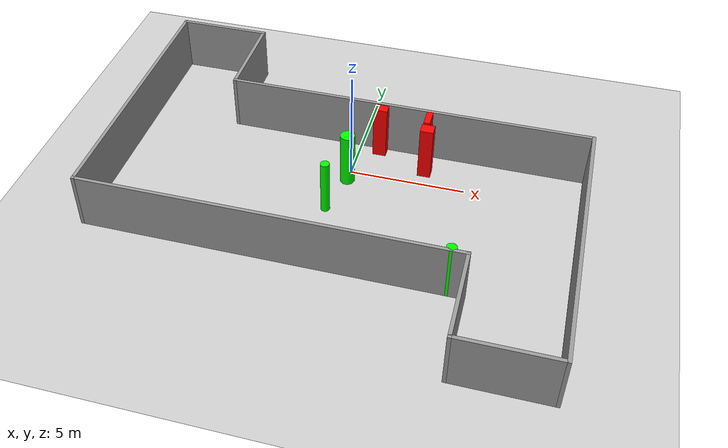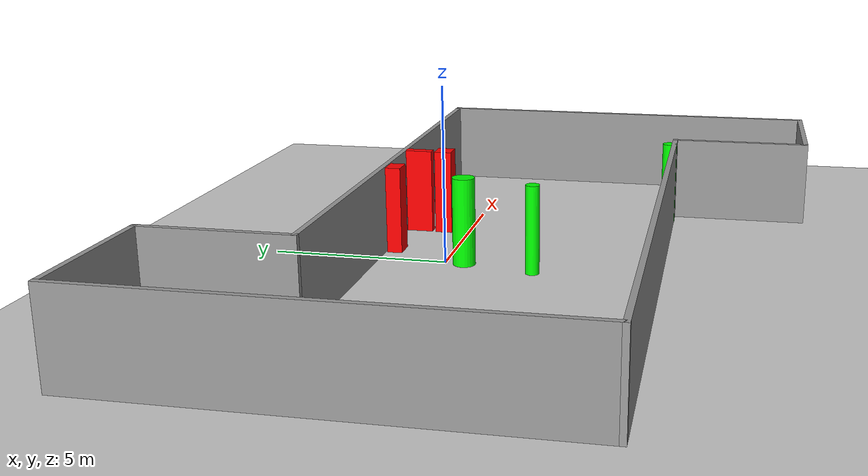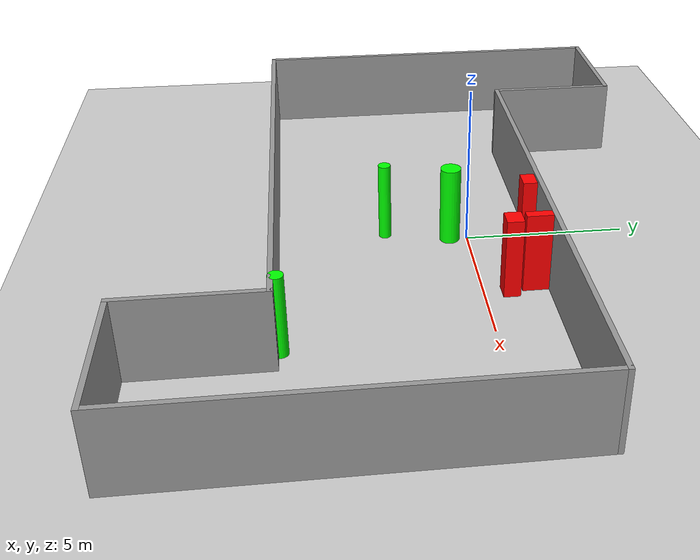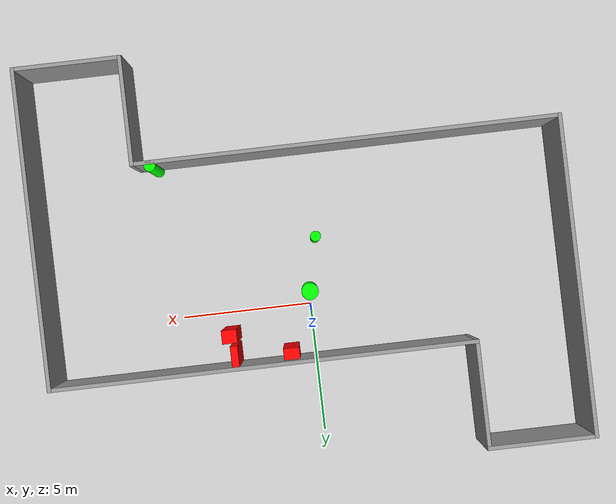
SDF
<sdf version="1.7">
 <world name="default">
  <light name="sun" type="directional">
   <pose>0 0 10 0 -0 0</pose>
   <diffuse>0.8 0.8 0.8 1</diffuse>
   <specular>0.2 0.2 0.2 1</specular>
   <attenuation>
    <range>1000</range>
    <constant>0.9</constant>
    <linear>0.01</linear>
    <quadratic>0.001</quadratic>
   </attenuation>
   <direction>-0.5 0.1 -0.9</direction>
   <spot><inner_angle>0</inner_angle><outer_angle>0</outer_angle><falloff>0</falloff></spot>
  </light>
  <model name="ground_plane">
   <static>1</static>
   <link name="link">
    <collision name="collision">
     <geometry><plane><normal>0 0 1</normal><size>100 100</size></plane></geometry>
     <surface>
      <contact><collide_bitmask>65535</collide_bitmask></contact>
      <friction><ode><mu>100</mu><mu2>50</mu2></ode></friction>
     </surface>
    </collision>
    <visual name="visual">
     <cast_shadows>0</cast_shadows>
     <geometry><plane><normal>0 0 1</normal><size>100 100</size></plane></geometry>
     <material>
      <script><uri>file://media/materials/scripts/gazebo.material</uri><name>Gazebo/Grey</name></script>
     </material>
    </visual>
   </link>
  </model>
  <gravity>0 0 -9.8</gravity>
  <magnetic_field>6e-06 2.3e-05 -4.2e-05</magnetic_field>
  <atmosphere type="adiabatic"/>
  <physics type="ode">
   <max_step_size>0.001</max_step_size>
   <real_time_factor>1</real_time_factor>
   <real_time_update_rate>1000</real_time_update_rate>
  </physics>
  <scene><ambient>0.4 0.4 0.4 1</ambient><background>0.7 0.7 0.7 1</background><shadows>1</shadows></scene>
  <spherical_coordinates>
   <surface_model>EARTH_WGS84</surface_model>
   <latitude_deg>0</latitude_deg>
   <longitude_deg>0</longitude_deg>
   <elevation>0</elevation>
   <heading_deg>0</heading_deg>
  </spherical_coordinates>
  <model name="my_base_walls">
   <link name="Wall_13">
    <collision name="Wall_13_Collision">
     <geometry><box><size>12.15 0.15 2.5</size></box></geometry>
     <pose>0 0 1.25 0 -0 0</pose>
    </collision>
    <visual name="Wall_13_Visual">
     <pose>0 0 1.25 0 -0 0</pose>
     <geometry><box><size>12.15 0.15 2.5</size></box></geometry>
     <material>
      <script><uri>file://media/materials/scripts/gazebo.material</uri><name>Gazebo/Grey</name></script>
      <ambient>1 1 1 1</ambient>
     </material>
     <meta><layer>0</layer></meta>
    </visual>
    <pose>10 -2 0 0 -0 1.5708</pose>
   </link>
   <link name="Wall_15">
    <collision name="Wall_15_Collision">
     <geometry><box><size>16.15 0.15 2.5</size></box></geometry>
     <pose>0 0 1.25 0 -0 0</pose>
    </collision>
    <visual name="Wall_15_Visual">
     <pose>0 0 1.25 0 -0 0</pose>
     <geometry><box><size>16.15 0.15 2.5</size></box></geometry>
     <material>
      <script><uri>file://media/materials/scripts/gazebo.material</uri><name>Gazebo/Grey</name></script>
      <ambient>1 1 1 1</ambient>
     </material>
     <meta><layer>0</layer></meta>
    </visual>
    <pose>2 4 0 0 -0 3.14159</pose>
   </link>
   <link name="Wall_17">
    <collision name="Wall_17_Collision">
     <geometry><box><size>4.15 0.15 2.5</size></box></geometry>
     <pose>0 0 1.25 0 -0 0</pose>
    </collision>
    <visual name="Wall_17_Visual">
     <pose>0 0 1.25 0 -0 0</pose>
     <geometry><box><size>4.15 0.15 2.5</size></box></geometry>
     <material>
      <script><uri>file://media/materials/scripts/gazebo.material</uri><name>Gazebo/Grey</name></script>
      <ambient>1 1 1 1</ambient>
     </material>
     <meta><layer>0</layer></meta>
    </visual>
    <pose>6 -6 0 0 -0 -1.5708</pose>
   </link>
   <link name="Wall_19">
    <collision name="Wall_19_Collision">
     <geometry><box><size>12.15 0.15 2.5</size></box></geometry>
     <pose>0 0 1.25 0 -0 0</pose>
    </collision>
    <visual name="Wall_19_Visual">
     <pose>0 0 1.25 0 -0 0</pose>
     <geometry><box><size>12.15 0.15 2.5</size></box></geometry>
     <material>
      <script><uri>file://media/materials/scripts/gazebo.material</uri><name>Gazebo/Grey</name></script>
      <ambient>1 1 1 1</ambient>
     </material>
     <meta><layer>0</layer></meta>
    </visual>
    <pose>-10 2 0 0 -0 1.5708</pose>
   </link>
   <link name="Wall_21">
    <collision name="Wall_21_Collision">
     <geometry><box><size>4.15 0.15 2.5</size></box></geometry>
     <pose>0 0 1.25 0 -0 0</pose>
    </collision>
    <visual name="Wall_21_Visual">
     <pose>0 0 1.25 0 -0 0</pose>
     <geometry><box><size>4.15 0.15 2.5</size></box></geometry>
     <material>
      <script><uri>file://media/materials/scripts/gazebo.material</uri><name>Gazebo/Grey</name></script>
      <ambient>1 1 1 1</ambient>
     </material>
     <meta><layer>0</layer></meta>
    </visual>
    <pose>-8 8 0 0 -0 0</pose>
   </link>
   <link name="Wall_23">
    <collision name="Wall_23_Collision">
     <geometry><box><size>4.15 0.15 2.5</size></box></geometry>
     <pose>0 0 1.25 0 -0 0</pose>
    </collision>
    <visual name="Wall_23_Visual">
     <pose>0 0 1.25 0 -0 0</pose>
     <geometry><box><size>4.15 0.15 2.5</size></box></geometry>
     <material>
      <script><uri>file://media/materials/scripts/gazebo.material</uri><name>Gazebo/Grey</name></script>
      <ambient>1 1 1 1</ambient>
     </material>
     <meta><layer>0</layer></meta>
    </visual>
    <pose>-6 6 0 0 -0 -1.5708</pose>
   </link>
   <link name="Wall_25">
    <collision name="Wall_25_Collision">
     <geometry><box><size>4.15 0.15 2.5</size></box></geometry>
     <pose>0 0 1.25 0 -0 0</pose>
    </collision>
    <visual name="Wall_25_Visual">
     <pose>0 0 1.25 0 -0 0</pose>
     <geometry><box><size>4.15 0.15 2.5</size></box></geometry>
     <material>
      <script><uri>file://media/materials/scripts/gazebo.material</uri><name>Gazebo/Grey</name></script>
      <ambient>1 1 1 1</ambient>
     </material>
     <meta><layer>0</layer></meta>
    </visual>
    <pose>8 -8 0 0 -0 0</pose>
   </link>
   <link name="Wall_9">
    <collision name="Wall_9_Collision">
     <geometry><box><size>16.15 0.15 2.5</size></box></geometry>
     <pose>0 0 1.25 0 -0 0</pose>
    </collision>
    <visual name="Wall_9_Visual">
     <pose>0 0 1.25 0 -0 0</pose>
     <geometry><box><size>16.15 0.15 2.5</size></box></geometry>
     <material>
      <script><uri>file://media/materials/scripts/gazebo.material</uri><name>Gazebo/Grey</name></script>
      <ambient>1 1 1 1</ambient>
     </material>
     <meta><layer>0</layer></meta>
    </visual>
    <pose>-2 -4 0 0 -0 3.14159</pose>
   </link>
   <static>1</static>
   <pose>-0 -2 0 0 -0 0</pose>
  </model>
  <model name="cylinder1">
   <static>1</static>
   <link name="link">
    <inertial>
     <mass>1</mass>
     <inertia><ixx>0.5</ixx><ixy>0</ixy><ixz>0</ixz><iyy>0.5</iyy><iyz>0</iyz><izz>1</izz></inertia>
    </inertial>
    <collision name="collision">
     <geometry><cylinder><radius>0.3181638244650403</radius><length>2.5</length></cylinder></geometry>
    </collision>
    <visual name="visual">
     <geometry><cylinder><radius>0.3181638244650403</radius><length>2.5</length></cylinder></geometry>
     <material>
      <ambient>0 1 0 1</ambient>
      <diffuse>0 1 0 1</diffuse>
      <specular>0.1 0.1 0.1 1</specular>
      <emissive>0 0 0 0</emissive>
     </material>
    </visual>
   </link>
   <pose>-0.04652383781834146 -0.5526707134114162 1.25 0 0 0</pose>
  </model>
  <model name="cylinder2">
   <static>1</static>
   <link name="link">
    <inertial>
     <mass>1</mass>
     <inertia><ixx>0.5</ixx><ixy>0</ixy><ixz>0</ixz><iyy>0.5</iyy><iyz>0</iyz><izz>1</izz></inertia>
    </inertial>
    <collision name="collision">
     <geometry><cylinder><radius>0.19410418828730971</radius><length>2.5</length></cylinder></geometry>
    </collision>
    <visual name="visual">
     <geometry><cylinder><radius>0.19410418828730971</radius><length>2.5</length></cylinder></geometry>
     <material>
      <ambient>0 1 0 1</ambient>
      <diffuse>0 1 0 1</diffuse>
      <specular>0.1 0.1 0.1 1</specular>
      <emissive>0 0 0 0</emissive>
     </material>
    </visual>
   </link>
   <pose>-0.48200507674966353 -2.5651864071568555 1.25 0 0 0</pose>
  </model>
  <model name="cylinder3">
   <static>1</static>
   <link name="link">
    <inertial>
     <mass>1</mass>
     <inertia><ixx>0.5</ixx><ixy>0</ixy><ixz>0</ixz><iyy>0.5</iyy><iyz>0</iyz><izz>1</izz></inertia>
    </inertial>
    <collision name="collision">
     <geometry><cylinder><radius>0.21527449647210034</radius><length>2.5</length></cylinder></geometry>
    </collision>
    <visual name="visual">
     <geometry><cylinder><radius>0.21527449647210034</radius><length>2.5</length></cylinder></geometry>
     <material>
      <ambient>0 1 0 1</ambient>
      <diffuse>0 1 0 1</diffuse>
      <specular>0.1 0.1 0.1 1</specular>
      <emissive>0 0 0 0</emissive>
     </material>
    </visual>
   </link>
   <pose>5.3401278450224225 -5.867265889286769 1.25 0 0 0</pose>
  </model>
  <model name="box1">
   <static>1</static>
   <link name="link">
    <inertial>
     <mass>1</mass>
     <inertia><ixx>0.083</ixx><ixy>0</ixy><ixz>0</ixz><iyy>0.083</iyy><iyz>0</iyz><izz>0.083</izz></inertia>
    </inertial>
    <collision name="collision">
     <geometry><box><size>0.595431835028837 0.4310547415752019 2.5</size></box></geometry>
    </collision>
    <visual name="visual">
     <geometry><box><size>0.595431835028837 0.4310547415752019 2.5</size></box></geometry>
     <material>
      <ambient>1 0 0 1</ambient>
      <diffuse>1 0 0 1</diffuse>
      <specular>0.1 0.1 0.1 1</specular>
      <emissive>0 0 0 0</emissive>
     </material>
    </visual>
    <sensor name="my_contact" type="contact">
     <contact><collision>box_collision</collision><topic>__default_topic__</topic></contact>
    </sensor>
   </link>
   <pose>0.8973483627397947 1.6675488380786057 1.25 0 0 0</pose>
  </model>
  <model name="box2">
   <static>1</static>
   <link name="link">
    <inertial>
     <mass>1</mass>
     <inertia><ixx>0.083</ixx><ixy>0</ixy><ixz>0</ixz><iyy>0.083</iyy><iyz>0</iyz><izz>0.083</izz></inertia>
    </inertial>
    <collision name="collision">
     <geometry><box><size>0.2801409331198107 0.7983216855313818 2.5</size></box></geometry>
    </collision>
    <visual name="visual">
     <geometry><box><size>0.2801409331198107 0.7983216855313818 2.5</size></box></geometry>
     <material>
      <ambient>1 0 0 1</ambient>
      <diffuse>1 0 0 1</diffuse>
      <specular>0.1 0.1 0.1 1</specular>
      <emissive>0 0 0 0</emissive>
     </material>
    </visual>
    <sensor name="my_contact" type="contact">
     <contact><collision>box_collision</collision><topic>__default_topic__</topic></contact>
    </sensor>
   </link>
   <pose>3.0068243496436615 1.537313523586577 1.25 0 0 0</pose>
  </model>
  <model name="box3">
   <static>1</static>
   <link name="link">
    <inertial>
     <mass>1</mass>
     <inertia><ixx>0.083</ixx><ixy>0</ixy><ixz>0</ixz><iyy>0.083</iyy><iyz>0</iyz><izz>0.083</izz></inertia>
    </inertial>
    <collision name="collision">
     <geometry><box><size>0.5718807136150114 0.5039458724043354 2.5</size></box></geometry>
    </collision>
    <visual name="visual">
     <geometry><box><size>0.5718807136150114 0.5039458724043354 2.5</size></box></geometry>
     <material>
      <ambient>1 0 0 1</ambient>
      <diffuse>1 0 0 1</diffuse>
      <specular>0.1 0.1 0.1 1</specular>
      <emissive>0 0 0 0</emissive>
     </material>
    </visual>
    <sensor name="my_contact" type="contact">
     <contact><collision>box_collision</collision><topic>__default_topic__</topic></contact>
    </sensor>
   </link>
   <pose>3.1255369321585835 0.7783684786457856 1.25 0 0 0</pose>
  </model>
 </world>
</sdf>
